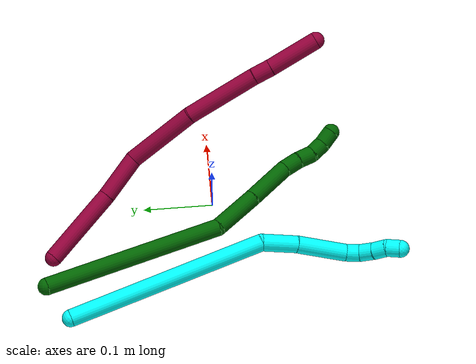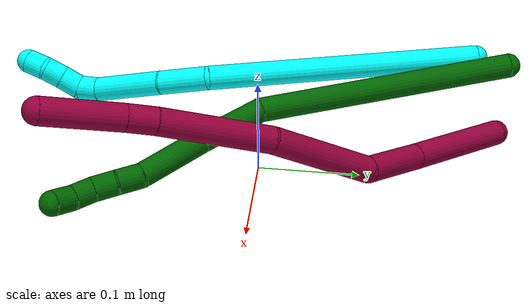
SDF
<sdf version="1.7">
 <world name="default">
  <model name="3">
   <static>0</static>
   <link name="3">
    <collision name="collision-cylinder-e_1_1_4">
     <pose>-0.007961 -0.093376 -0.111943 2.44638 -0.05456 -0.150339</pose>
     <geometry><cylinder><radius>0.0125</radius><length>0.291985</length></cylinder></geometry>
     <surface>
      <friction><ode><mu>1.16</mu><mu2>1.16</mu2><slip1>0</slip1><slip2>0</slip2></ode></friction>
      <contact><ode><kp>1e+06</kp><kd>1</kd><max_vel>0</max_vel><min_depth>0.001</min_depth></ode></contact>
     </surface>
    </collision>
    <visual name="visual-cylinder-e_1_1_4">
     <pose>-0.007961 -0.093376 -0.111943 2.44638 -0.05456 -0.150339</pose>
     <geometry><cylinder><radius>0.0125</radius><length>0.291985</length></cylinder></geometry>
     <material><ambient>0.003922 1 0.996078 1</ambient></material>
    </visual>
    <collision name="collision-cylinder-e_2_4_5">
     <pose>-0.010751 -0.208688 -0.236737 2.10075 0.2007 0.34782</pose>
     <geometry><cylinder><radius>0.0125</radius><length>0.051886</length></cylinder></geometry>
     <surface>
      <friction><ode><mu>1.16</mu><mu2>1.16</mu2><slip1>0</slip1><slip2>0</slip2></ode></friction>
      <contact><ode><kp>1e+06</kp><kd>1</kd><max_vel>0</max_vel><min_depth>0.001</min_depth></ode></contact>
     </surface>
    </collision>
    <visual name="visual-cylinder-e_2_4_5">
     <pose>-0.010751 -0.208688 -0.236737 2.10075 0.2007 0.34782</pose>
     <geometry><cylinder><radius>0.0125</radius><length>0.051886</length></cylinder></geometry>
     <material><ambient>0.003922 1 0.996078 1</ambient></material>
    </visual>
    <collision name="collision-cylinder-e_3_5_6">
     <pose>0.00411 -0.262659 -0.264437 2.00483 0.267816 0.415753</pose>
     <geometry><cylinder><radius>0.0125</radius><length>0.073232</length></cylinder></geometry>
     <surface>
      <friction><ode><mu>1.16</mu><mu2>1.16</mu2><slip1>0</slip1><slip2>0</slip2></ode></friction>
      <contact><ode><kp>1e+06</kp><kd>1</kd><max_vel>0</max_vel><min_depth>0.001</min_depth></ode></contact>
     </surface>
    </collision>
    <visual name="visual-cylinder-e_3_5_6">
     <pose>0.00411 -0.262659 -0.264437 2.00483 0.267816 0.415753</pose>
     <geometry><cylinder><radius>0.0125</radius><length>0.073232</length></cylinder></geometry>
     <material><ambient>0.003922 1 0.996078 1</ambient></material>
    </visual>
    <collision name="collision-cylinder-e_4_6_7">
     <pose>0.016978 -0.302329 -0.285565 2.25917 0.3111 0.641202</pose>
     <geometry><cylinder><radius>0.0125</radius><length>0.020766</length></cylinder></geometry>
     <surface>
      <friction><ode><mu>1.16</mu><mu2>1.16</mu2><slip1>0</slip1><slip2>0</slip2></ode></friction>
      <contact><ode><kp>1e+06</kp><kd>1</kd><max_vel>0</max_vel><min_depth>0.001</min_depth></ode></contact>
     </surface>
    </collision>
    <visual name="visual-cylinder-e_4_6_7">
     <pose>0.016978 -0.302329 -0.285565 2.25917 0.3111 0.641202</pose>
     <geometry><cylinder><radius>0.0125</radius><length>0.020766</length></cylinder></geometry>
     <material><ambient>0.003922 1 0.996078 1</ambient></material>
    </visual>
    <collision name="collision-cylinder-e_5_7_8">
     <pose>0.025255 -0.313507 -0.300778 2.76396 0.487794 1.83187</pose>
     <geometry><cylinder><radius>0.0125</radius><length>0.021758</length></cylinder></geometry>
     <surface>
      <friction><ode><mu>1.16</mu><mu2>1.16</mu2><slip1>0</slip1><slip2>0</slip2></ode></friction>
      <contact><ode><kp>1e+06</kp><kd>1</kd><max_vel>0</max_vel><min_depth>0.001</min_depth></ode></contact>
     </surface>
    </collision>
    <visual name="visual-cylinder-e_5_7_8">
     <pose>0.025255 -0.313507 -0.300778 2.76396 0.487794 1.83187</pose>
     <geometry><cylinder><radius>0.0125</radius><length>0.021758</length></cylinder></geometry>
     <material><ambient>0.003922 1 0.996078 1</ambient></material>
    </visual>
    <collision name="collision-cylinder-e_6_8_9">
     <pose>0.034263 -0.320208 -0.318451 2.79485 0.398136 1.71178</pose>
     <geometry><cylinder><radius>0.0125</radius><length>0.020164</length></cylinder></geometry>
     <surface>
      <friction><ode><mu>1.16</mu><mu2>1.16</mu2><slip1>0</slip1><slip2>0</slip2></ode></friction>
      <contact><ode><kp>1e+06</kp><kd>1</kd><max_vel>0</max_vel><min_depth>0.001</min_depth></ode></contact>
     </surface>
    </collision>
    <visual name="visual-cylinder-e_6_8_9">
     <pose>0.034263 -0.320208 -0.318451 2.79485 0.398136 1.71178</pose>
     <geometry><cylinder><radius>0.0125</radius><length>0.020164</length></cylinder></geometry>
     <material><ambient>0.003922 1 0.996078 1</ambient></material>
    </visual>
    <collision name="collision-cylinder-e_7_9_2">
     <pose>0.043465 -0.328666 -0.333975 2.47839 0.551381 1.37556</pose>
     <geometry><cylinder><radius>0.0125</radius><length>0.02021</length></cylinder></geometry>
     <surface>
      <friction><ode><mu>1.16</mu><mu2>1.16</mu2><slip1>0</slip1><slip2>0</slip2></ode></friction>
      <contact><ode><kp>1e+06</kp><kd>1</kd><max_vel>0</max_vel><min_depth>0.001</min_depth></ode></contact>
     </surface>
    </collision>
    <visual name="visual-cylinder-e_7_9_2">
     <pose>0.043465 -0.328666 -0.333975 2.47839 0.551381 1.37556</pose>
     <geometry><cylinder><radius>0.0125</radius><length>0.02021</length></cylinder></geometry>
     <material><ambient>0.003922 1 0.996078 1</ambient></material>
    </visual>
    <collision name="collision-sphere-2">
     <pose>0.048759 -0.333965 -0.340757 0 -0 0</pose>
     <geometry><sphere><radius>0.0125</radius></sphere></geometry>
     <surface>
      <friction><ode><mu>1.16</mu><mu2>1.16</mu2><slip1>0</slip1><slip2>0</slip2></ode></friction>
      <contact><ode><kp>1e+06</kp><kd>1</kd><max_vel>0</max_vel><min_depth>0.001</min_depth></ode></contact>
     </surface>
    </collision>
    <visual name="visual-sphere-2">
     <pose>0.048759 -0.333965 -0.340757 0 -0 0</pose>
     <geometry><sphere><radius>0.0125</radius></sphere></geometry>
     <material><ambient>0.003922 1 0.996078 1</ambient></material>
    </visual>
    <collision name="collision-sphere-9">
     <pose>0.038172 -0.323367 -0.327192 0 -0 0</pose>
     <geometry><sphere><radius>0.0125</radius></sphere></geometry>
     <surface>
      <friction><ode><mu>1.16</mu><mu2>1.16</mu2><slip1>0</slip1><slip2>0</slip2></ode></friction>
      <contact><ode><kp>1e+06</kp><kd>1</kd><max_vel>0</max_vel><min_depth>0.001</min_depth></ode></contact>
     </surface>
    </collision>
    <visual name="visual-sphere-9">
     <pose>0.038172 -0.323367 -0.327192 0 -0 0</pose>
     <geometry><sphere><radius>0.0125</radius></sphere></geometry>
     <material><ambient>0.003922 1 0.996078 1</ambient></material>
    </visual>
    <collision name="collision-sphere-4">
     <pose>-0.015923 -0.186753 -0.223886 0 -0 0</pose>
     <geometry><sphere><radius>0.0125</radius></sphere></geometry>
     <surface>
      <friction><ode><mu>1.16</mu><mu2>1.16</mu2><slip1>0</slip1><slip2>0</slip2></ode></friction>
      <contact><ode><kp>1e+06</kp><kd>1</kd><max_vel>0</max_vel><min_depth>0.001</min_depth></ode></contact>
     </surface>
    </collision>
    <visual name="visual-sphere-4">
     <pose>-0.015923 -0.186753 -0.223886 0 -0 0</pose>
     <geometry><sphere><radius>0.0125</radius></sphere></geometry>
     <material><ambient>0.003922 1 0.996078 1</ambient></material>
    </visual>
    <collision name="collision-sphere-1">
     <geometry><sphere><radius>0.0125</radius></sphere></geometry>
     <surface>
      <friction><ode><mu>1.16</mu><mu2>1.16</mu2><slip1>0</slip1><slip2>0</slip2></ode></friction>
      <contact><ode><kp>1e+06</kp><kd>1</kd><max_vel>0</max_vel><min_depth>0.001</min_depth></ode></contact>
     </surface>
    </collision>
    <visual name="visual-sphere-1">
     <geometry><sphere><radius>0.0125</radius></sphere></geometry>
     <material><ambient>0.003922 1 0.996078 1</ambient></material>
    </visual>
    <collision name="collision-sphere-8">
     <pose>0.030354 -0.31705 -0.309711 0 -0 0</pose>
     <geometry><sphere><radius>0.0125</radius></sphere></geometry>
     <surface>
      <friction><ode><mu>1.16</mu><mu2>1.16</mu2><slip1>0</slip1><slip2>0</slip2></ode></friction>
      <contact><ode><kp>1e+06</kp><kd>1</kd><max_vel>0</max_vel><min_depth>0.001</min_depth></ode></contact>
     </surface>
    </collision>
    <visual name="visual-sphere-8">
     <pose>0.030354 -0.31705 -0.309711 0 -0 0</pose>
     <geometry><sphere><radius>0.0125</radius></sphere></geometry>
     <material><ambient>0.003922 1 0.996078 1</ambient></material>
    </visual>
    <collision name="collision-sphere-5">
     <pose>-0.005579 -0.230623 -0.249587 0 -0 0</pose>
     <geometry><sphere><radius>0.0125</radius></sphere></geometry>
     <surface>
      <friction><ode><mu>1.16</mu><mu2>1.16</mu2><slip1>0</slip1><slip2>0</slip2></ode></friction>
      <contact><ode><kp>1e+06</kp><kd>1</kd><max_vel>0</max_vel><min_depth>0.001</min_depth></ode></contact>
     </surface>
    </collision>
    <visual name="visual-sphere-5">
     <pose>-0.005579 -0.230623 -0.249587 0 -0 0</pose>
     <geometry><sphere><radius>0.0125</radius></sphere></geometry>
     <material><ambient>0.003922 1 0.996078 1</ambient></material>
    </visual>
    <collision name="collision-sphere-6">
     <pose>0.0138 -0.294696 -0.279286 0 -0 0</pose>
     <geometry><sphere><radius>0.0125</radius></sphere></geometry>
     <surface>
      <friction><ode><mu>1.16</mu><mu2>1.16</mu2><slip1>0</slip1><slip2>0</slip2></ode></friction>
      <contact><ode><kp>1e+06</kp><kd>1</kd><max_vel>0</max_vel><min_depth>0.001</min_depth></ode></contact>
     </surface>
    </collision>
    <visual name="visual-sphere-6">
     <pose>0.0138 -0.294696 -0.279286 0 -0 0</pose>
     <geometry><sphere><radius>0.0125</radius></sphere></geometry>
     <material><ambient>0.003922 1 0.996078 1</ambient></material>
    </visual>
    <collision name="collision-sphere-7">
     <pose>0.020157 -0.309963 -0.291845 0 -0 0</pose>
     <geometry><sphere><radius>0.0125</radius></sphere></geometry>
     <surface>
      <friction><ode><mu>1.16</mu><mu2>1.16</mu2><slip1>0</slip1><slip2>0</slip2></ode></friction>
      <contact><ode><kp>1e+06</kp><kd>1</kd><max_vel>0</max_vel><min_depth>0.001</min_depth></ode></contact>
     </surface>
    </collision>
    <visual name="visual-sphere-7">
     <pose>0.020157 -0.309963 -0.291845 0 -0 0</pose>
     <geometry><sphere><radius>0.0125</radius></sphere></geometry>
     <material><ambient>0.003922 1 0.996078 1</ambient></material>
    </visual>
    <inertial>
     <pose>-0.00022 -0.167052 -0.179958 0 -0 0</pose>
     <mass>0.5</mass>
     <inertia>
      <ixx>0.001819</ixx>
      <ixy>0</ixy>
      <ixz>0</ixz>
      <iyy>-0.001903</iyy>
      <iyz>0</iyz>
      <izz>0.001452</izz>
     </inertia>
    </inertial>
   </link>
   <pose>-0.177607 0.214972 0.032556 2.32206 -0.282167 -2.89922</pose>
  </model>
  <model name="6">
   <static>0</static>
   <link name="6">
    <collision name="collision-cylinder-e_1_1_4">
     <pose>0.019491 -0.108825 0.071413 0.990062 0.148636 0.080349</pose>
     <geometry><cylinder><radius>0.0125</radius><length>0.26323</length></cylinder></geometry>
     <surface>
      <friction><ode><mu>1.16</mu><mu2>1.16</mu2><slip1>0</slip1><slip2>0</slip2></ode></friction>
      <contact><ode><kp>1e+06</kp><kd>1</kd><max_vel>0</max_vel><min_depth>0.001</min_depth></ode></contact>
     </surface>
    </collision>
    <visual name="visual-cylinder-e_1_1_4">
     <pose>0.019491 -0.108825 0.071413 0.990062 0.148636 0.080349</pose>
     <geometry><cylinder><radius>0.0125</radius><length>0.26323</length></cylinder></geometry>
     <material><ambient>0 0.392157 0.003922 1</ambient></material>
    </visual>
    <collision name="collision-cylinder-e_2_4_5">
     <pose>0.054504 -0.248836 0.151942 1.2864 0.445673 0.336474</pose>
     <geometry><cylinder><radius>0.0125</radius><length>0.072017</length></cylinder></geometry>
     <surface>
      <friction><ode><mu>1.16</mu><mu2>1.16</mu2><slip1>0</slip1><slip2>0</slip2></ode></friction>
      <contact><ode><kp>1e+06</kp><kd>1</kd><max_vel>0</max_vel><min_depth>0.001</min_depth></ode></contact>
     </surface>
    </collision>
    <visual name="visual-cylinder-e_2_4_5">
     <pose>0.054504 -0.248836 0.151942 1.2864 0.445673 0.336474</pose>
     <geometry><cylinder><radius>0.0125</radius><length>0.072017</length></cylinder></geometry>
     <material><ambient>0 0.392157 0.003922 1</ambient></material>
    </visual>
    <collision name="collision-cylinder-e_3_5_6">
     <pose>0.08578 -0.310932 0.168772 1.32624 0.459261 0.3612</pose>
     <geometry><cylinder><radius>0.0125</radius><length>0.071083</length></cylinder></geometry>
     <surface>
      <friction><ode><mu>1.16</mu><mu2>1.16</mu2><slip1>0</slip1><slip2>0</slip2></ode></friction>
      <contact><ode><kp>1e+06</kp><kd>1</kd><max_vel>0</max_vel><min_depth>0.001</min_depth></ode></contact>
     </surface>
    </collision>
    <visual name="visual-cylinder-e_3_5_6">
     <pose>0.08578 -0.310932 0.168772 1.32624 0.459261 0.3612</pose>
     <geometry><cylinder><radius>0.0125</radius><length>0.071083</length></cylinder></geometry>
     <material><ambient>0 0.392157 0.003922 1</ambient></material>
    </visual>
    <collision name="collision-cylinder-e_4_6_7">
     <pose>0.106023 -0.352252 0.182193 1.06924 0.361426 0.215537</pose>
     <geometry><cylinder><radius>0.0125</radius><length>0.025382</length></cylinder></geometry>
     <surface>
      <friction><ode><mu>1.16</mu><mu2>1.16</mu2><slip1>0</slip1><slip2>0</slip2></ode></friction>
      <contact><ode><kp>1e+06</kp><kd>1</kd><max_vel>0</max_vel><min_depth>0.001</min_depth></ode></contact>
     </surface>
    </collision>
    <visual name="visual-cylinder-e_4_6_7">
     <pose>0.106023 -0.352252 0.182193 1.06924 0.361426 0.215537</pose>
     <geometry><cylinder><radius>0.0125</radius><length>0.025382</length></cylinder></geometry>
     <material><ambient>0 0.392157 0.003922 1</ambient></material>
    </visual>
    <collision name="collision-cylinder-e_5_7_8">
     <pose>0.113165 -0.372832 0.19324 1.08744 0.227073 0.13764</pose>
     <geometry><cylinder><radius>0.0125</radius><length>0.02358</length></cylinder></geometry>
     <surface>
      <friction><ode><mu>1.16</mu><mu2>1.16</mu2><slip1>0</slip1><slip2>0</slip2></ode></friction>
      <contact><ode><kp>1e+06</kp><kd>1</kd><max_vel>0</max_vel><min_depth>0.001</min_depth></ode></contact>
     </surface>
    </collision>
    <visual name="visual-cylinder-e_5_7_8">
     <pose>0.113165 -0.372832 0.19324 1.08744 0.227073 0.13764</pose>
     <geometry><cylinder><radius>0.0125</radius><length>0.02358</length></cylinder></geometry>
     <material><ambient>0 0.392157 0.003922 1</ambient></material>
    </visual>
    <collision name="collision-cylinder-e_6_8_9">
     <pose>0.121354 -0.391878 0.202211 1.18228 0.523497 0.355824</pose>
     <geometry><cylinder><radius>0.0125</radius><length>0.022143</length></cylinder></geometry>
     <surface>
      <friction><ode><mu>1.16</mu><mu2>1.16</mu2><slip1>0</slip1><slip2>0</slip2></ode></friction>
      <contact><ode><kp>1e+06</kp><kd>1</kd><max_vel>0</max_vel><min_depth>0.001</min_depth></ode></contact>
     </surface>
    </collision>
    <visual name="visual-cylinder-e_6_8_9">
     <pose>0.121354 -0.391878 0.202211 1.18228 0.523497 0.355824</pose>
     <geometry><cylinder><radius>0.0125</radius><length>0.022143</length></cylinder></geometry>
     <material><ambient>0 0.392157 0.003922 1</ambient></material>
    </visual>
    <collision name="collision-cylinder-e_7_9_2">
     <pose>0.134559 -0.407762 0.21024 1.01055 0.747502 0.427272</pose>
     <geometry><cylinder><radius>0.0125</radius><length>0.022565</length></cylinder></geometry>
     <surface>
      <friction><ode><mu>1.16</mu><mu2>1.16</mu2><slip1>0</slip1><slip2>0</slip2></ode></friction>
      <contact><ode><kp>1e+06</kp><kd>1</kd><max_vel>0</max_vel><min_depth>0.001</min_depth></ode></contact>
     </surface>
    </collision>
    <visual name="visual-cylinder-e_7_9_2">
     <pose>0.134559 -0.407762 0.21024 1.01055 0.747502 0.427272</pose>
     <geometry><cylinder><radius>0.0125</radius><length>0.022565</length></cylinder></geometry>
     <material><ambient>0 0.392157 0.003922 1</ambient></material>
    </visual>
    <collision name="collision-sphere-2">
     <pose>0.142229 -0.414771 0.214637 0 -0 0</pose>
     <geometry><sphere><radius>0.0125</radius></sphere></geometry>
     <surface>
      <friction><ode><mu>1.16</mu><mu2>1.16</mu2><slip1>0</slip1><slip2>0</slip2></ode></friction>
      <contact><ode><kp>1e+06</kp><kd>1</kd><max_vel>0</max_vel><min_depth>0.001</min_depth></ode></contact>
     </surface>
    </collision>
    <visual name="visual-sphere-2">
     <pose>0.142229 -0.414771 0.214637 0 -0 0</pose>
     <geometry><sphere><radius>0.0125</radius></sphere></geometry>
     <material><ambient>0 0.392157 0.003922 1</ambient></material>
    </visual>
    <collision name="collision-sphere-9">
     <pose>0.126889 -0.400752 0.205843 0 -0 0</pose>
     <geometry><sphere><radius>0.0125</radius></sphere></geometry>
     <surface>
      <friction><ode><mu>1.16</mu><mu2>1.16</mu2><slip1>0</slip1><slip2>0</slip2></ode></friction>
      <contact><ode><kp>1e+06</kp><kd>1</kd><max_vel>0</max_vel><min_depth>0.001</min_depth></ode></contact>
     </surface>
    </collision>
    <visual name="visual-sphere-9">
     <pose>0.126889 -0.400752 0.205843 0 -0 0</pose>
     <geometry><sphere><radius>0.0125</radius></sphere></geometry>
     <material><ambient>0 0.392157 0.003922 1</ambient></material>
    </visual>
    <collision name="collision-sphere-4">
     <pose>0.038982 -0.21765 0.142826 0 -0 0</pose>
     <geometry><sphere><radius>0.0125</radius></sphere></geometry>
     <surface>
      <friction><ode><mu>1.16</mu><mu2>1.16</mu2><slip1>0</slip1><slip2>0</slip2></ode></friction>
      <contact><ode><kp>1e+06</kp><kd>1</kd><max_vel>0</max_vel><min_depth>0.001</min_depth></ode></contact>
     </surface>
    </collision>
    <visual name="visual-sphere-4">
     <pose>0.038982 -0.21765 0.142826 0 -0 0</pose>
     <geometry><sphere><radius>0.0125</radius></sphere></geometry>
     <material><ambient>0 0.392157 0.003922 1</ambient></material>
    </visual>
    <collision name="collision-sphere-1">
     <geometry><sphere><radius>0.0125</radius></sphere></geometry>
     <surface>
      <friction><ode><mu>1.16</mu><mu2>1.16</mu2><slip1>0</slip1><slip2>0</slip2></ode></friction>
      <contact><ode><kp>1e+06</kp><kd>1</kd><max_vel>0</max_vel><min_depth>0.001</min_depth></ode></contact>
     </surface>
    </collision>
    <visual name="visual-sphere-1">
     <geometry><sphere><radius>0.0125</radius></sphere></geometry>
     <material><ambient>0 0.392157 0.003922 1</ambient></material>
    </visual>
    <collision name="collision-sphere-8">
     <pose>0.115819 -0.383004 0.198579 0 -0 0</pose>
     <geometry><sphere><radius>0.0125</radius></sphere></geometry>
     <surface>
      <friction><ode><mu>1.16</mu><mu2>1.16</mu2><slip1>0</slip1><slip2>0</slip2></ode></friction>
      <contact><ode><kp>1e+06</kp><kd>1</kd><max_vel>0</max_vel><min_depth>0.001</min_depth></ode></contact>
     </surface>
    </collision>
    <visual name="visual-sphere-8">
     <pose>0.115819 -0.383004 0.198579 0 -0 0</pose>
     <geometry><sphere><radius>0.0125</radius></sphere></geometry>
     <material><ambient>0 0.392157 0.003922 1</ambient></material>
    </visual>
    <collision name="collision-sphere-5">
     <pose>0.070026 -0.280022 0.161059 0 -0 0</pose>
     <geometry><sphere><radius>0.0125</radius></sphere></geometry>
     <surface>
      <friction><ode><mu>1.16</mu><mu2>1.16</mu2><slip1>0</slip1><slip2>0</slip2></ode></friction>
      <contact><ode><kp>1e+06</kp><kd>1</kd><max_vel>0</max_vel><min_depth>0.001</min_depth></ode></contact>
     </surface>
    </collision>
    <visual name="visual-sphere-5">
     <pose>0.070026 -0.280022 0.161059 0 -0 0</pose>
     <geometry><sphere><radius>0.0125</radius></sphere></geometry>
     <material><ambient>0 0.392157 0.003922 1</ambient></material>
    </visual>
    <collision name="collision-sphere-6">
     <pose>0.101535 -0.341843 0.176486 0 -0 0</pose>
     <geometry><sphere><radius>0.0125</radius></sphere></geometry>
     <surface>
      <friction><ode><mu>1.16</mu><mu2>1.16</mu2><slip1>0</slip1><slip2>0</slip2></ode></friction>
      <contact><ode><kp>1e+06</kp><kd>1</kd><max_vel>0</max_vel><min_depth>0.001</min_depth></ode></contact>
     </surface>
    </collision>
    <visual name="visual-sphere-6">
     <pose>0.101535 -0.341843 0.176486 0 -0 0</pose>
     <geometry><sphere><radius>0.0125</radius></sphere></geometry>
     <material><ambient>0 0.392157 0.003922 1</ambient></material>
    </visual>
    <collision name="collision-sphere-7">
     <pose>0.110511 -0.362661 0.187901 0 -0 0</pose>
     <geometry><sphere><radius>0.0125</radius></sphere></geometry>
     <surface>
      <friction><ode><mu>1.16</mu><mu2>1.16</mu2><slip1>0</slip1><slip2>0</slip2></ode></friction>
      <contact><ode><kp>1e+06</kp><kd>1</kd><max_vel>0</max_vel><min_depth>0.001</min_depth></ode></contact>
     </surface>
    </collision>
    <visual name="visual-sphere-7">
     <pose>0.110511 -0.362661 0.187901 0 -0 0</pose>
     <geometry><sphere><radius>0.0125</radius></sphere></geometry>
     <material><ambient>0 0.392157 0.003922 1</ambient></material>
    </visual>
    <inertial>
     <pose>0.052473 -0.208558 0.12028 0 -0 0</pose>
     <mass>0.5</mass>
     <inertia>
      <ixx>0.001726</ixx>
      <ixy>0</ixy>
      <ixz>0</ixz>
      <iyy>0.000994</iyy>
      <iyz>0</iyz>
      <izz>0.001087</izz>
     </inertia>
    </inertial>
   </link>
   <pose>-0.13461 0.245569 0.051752 0.763635 -0.566793 0.091075</pose>
  </model>
  <model name="8">
   <static>0</static>
   <link name="8">
    <collision name="collision-cylinder-e_1_1_4">
     <pose>0.00776 -0.037051 -0.044924 2.45195 0.132473 0.365254</pose>
     <geometry><cylinder><radius>0.0125</radius><length>0.117493</length></cylinder></geometry>
     <surface>
      <friction><ode><mu>1.16</mu><mu2>1.16</mu2><slip1>0</slip1><slip2>0</slip2></ode></friction>
      <contact><ode><kp>1e+06</kp><kd>1</kd><max_vel>0</max_vel><min_depth>0.001</min_depth></ode></contact>
     </surface>
    </collision>
    <visual name="visual-cylinder-e_1_1_4">
     <pose>0.00776 -0.037051 -0.044924 2.45195 0.132473 0.365254</pose>
     <geometry><cylinder><radius>0.0125</radius><length>0.117493</length></cylinder></geometry>
     <material><ambient>0.584314 0 0.227451 1</ambient></material>
    </visual>
    <collision name="collision-cylinder-e_2_4_5">
     <pose>0.017044 -0.094955 -0.115823 2.46513 0.045746 0.129893</pose>
     <geometry><cylinder><radius>0.0125</radius><length>0.06669</length></cylinder></geometry>
     <surface>
      <friction><ode><mu>1.16</mu><mu2>1.16</mu2><slip1>0</slip1><slip2>0</slip2></ode></friction>
      <contact><ode><kp>1e+06</kp><kd>1</kd><max_vel>0</max_vel><min_depth>0.001</min_depth></ode></contact>
     </surface>
    </collision>
    <visual name="visual-cylinder-e_2_4_5">
     <pose>0.017044 -0.094955 -0.115823 2.46513 0.045746 0.129893</pose>
     <geometry><cylinder><radius>0.0125</radius><length>0.06669</length></cylinder></geometry>
     <material><ambient>0.584314 0 0.227451 1</ambient></material>
    </visual>
    <collision name="collision-cylinder-e_3_5_6">
     <pose>0.02614 -0.126498 -0.193217 2.93661 0.143166 1.21766</pose>
     <geometry><cylinder><radius>0.0125</radius><length>0.106123</length></cylinder></geometry>
     <surface>
      <friction><ode><mu>1.16</mu><mu2>1.16</mu2><slip1>0</slip1><slip2>0</slip2></ode></friction>
      <contact><ode><kp>1e+06</kp><kd>1</kd><max_vel>0</max_vel><min_depth>0.001</min_depth></ode></contact>
     </surface>
    </collision>
    <visual name="visual-cylinder-e_3_5_6">
     <pose>0.02614 -0.126498 -0.193217 2.93661 0.143166 1.21766</pose>
     <geometry><cylinder><radius>0.0125</radius><length>0.106123</length></cylinder></geometry>
     <material><ambient>0.584314 0 0.227451 1</ambient></material>
    </visual>
    <collision name="collision-cylinder-e_4_6_7">
     <pose>0.049956 -0.151135 -0.294259 2.8676 0.305326 1.68037</pose>
     <geometry><cylinder><radius>0.0125</radius><length>0.10809</length></cylinder></geometry>
     <surface>
      <friction><ode><mu>1.16</mu><mu2>1.16</mu2><slip1>0</slip1><slip2>0</slip2></ode></friction>
      <contact><ode><kp>1e+06</kp><kd>1</kd><max_vel>0</max_vel><min_depth>0.001</min_depth></ode></contact>
     </surface>
    </collision>
    <visual name="visual-cylinder-e_4_6_7">
     <pose>0.049956 -0.151135 -0.294259 2.8676 0.305326 1.68037</pose>
     <geometry><cylinder><radius>0.0125</radius><length>0.10809</length></cylinder></geometry>
     <material><ambient>0.584314 0 0.227451 1</ambient></material>
    </visual>
    <collision name="collision-cylinder-e_5_7_8">
     <pose>0.071197 -0.168768 -0.355748 2.84043 0.382168 1.81133</pose>
     <geometry><cylinder><radius>0.0125</radius><length>0.026785</length></cylinder></geometry>
     <surface>
      <friction><ode><mu>1.16</mu><mu2>1.16</mu2><slip1>0</slip1><slip2>0</slip2></ode></friction>
      <contact><ode><kp>1e+06</kp><kd>1</kd><max_vel>0</max_vel><min_depth>0.001</min_depth></ode></contact>
     </surface>
    </collision>
    <visual name="visual-cylinder-e_5_7_8">
     <pose>0.071197 -0.168768 -0.355748 2.84043 0.382168 1.81133</pose>
     <geometry><cylinder><radius>0.0125</radius><length>0.026785</length></cylinder></geometry>
     <material><ambient>0.584314 0 0.227451 1</ambient></material>
    </visual>
    <collision name="collision-cylinder-e_6_8_2">
     <pose>0.088773 -0.18454 -0.400708 2.79145 0.343003 1.54978</pose>
     <geometry><cylinder><radius>0.0125</radius><length>0.07482</length></cylinder></geometry>
     <surface>
      <friction><ode><mu>1.16</mu><mu2>1.16</mu2><slip1>0</slip1><slip2>0</slip2></ode></friction>
      <contact><ode><kp>1e+06</kp><kd>1</kd><max_vel>0</max_vel><min_depth>0.001</min_depth></ode></contact>
     </surface>
    </collision>
    <visual name="visual-cylinder-e_6_8_2">
     <pose>0.088773 -0.18454 -0.400708 2.79145 0.343003 1.54978</pose>
     <geometry><cylinder><radius>0.0125</radius><length>0.07482</length></cylinder></geometry>
     <material><ambient>0.584314 0 0.227451 1</ambient></material>
    </visual>
    <collision name="collision-sphere-2">
     <pose>0.101355 -0.196625 -0.433801 0 -0 0</pose>
     <geometry><sphere><radius>0.0125</radius></sphere></geometry>
     <surface>
      <friction><ode><mu>1.16</mu><mu2>1.16</mu2><slip1>0</slip1><slip2>0</slip2></ode></friction>
      <contact><ode><kp>1e+06</kp><kd>1</kd><max_vel>0</max_vel><min_depth>0.001</min_depth></ode></contact>
     </surface>
    </collision>
    <visual name="visual-sphere-2">
     <pose>0.101355 -0.196625 -0.433801 0 -0 0</pose>
     <geometry><sphere><radius>0.0125</radius></sphere></geometry>
     <material><ambient>0.584314 0 0.227451 1</ambient></material>
    </visual>
    <collision name="collision-sphere-4">
     <pose>0.015519 -0.074101 -0.089848 0 -0 0</pose>
     <geometry><sphere><radius>0.0125</radius></sphere></geometry>
     <surface>
      <friction><ode><mu>1.16</mu><mu2>1.16</mu2><slip1>0</slip1><slip2>0</slip2></ode></friction>
      <contact><ode><kp>1e+06</kp><kd>1</kd><max_vel>0</max_vel><min_depth>0.001</min_depth></ode></contact>
     </surface>
    </collision>
    <visual name="visual-sphere-4">
     <pose>0.015519 -0.074101 -0.089848 0 -0 0</pose>
     <geometry><sphere><radius>0.0125</radius></sphere></geometry>
     <material><ambient>0.584314 0 0.227451 1</ambient></material>
    </visual>
    <collision name="collision-sphere-1">
     <geometry><sphere><radius>0.0125</radius></sphere></geometry>
     <surface>
      <friction><ode><mu>1.16</mu><mu2>1.16</mu2><slip1>0</slip1><slip2>0</slip2></ode></friction>
      <contact><ode><kp>1e+06</kp><kd>1</kd><max_vel>0</max_vel><min_depth>0.001</min_depth></ode></contact>
     </surface>
    </collision>
    <visual name="visual-sphere-1">
     <geometry><sphere><radius>0.0125</radius></sphere></geometry>
     <material><ambient>0.584314 0 0.227451 1</ambient></material>
    </visual>
    <collision name="collision-sphere-8">
     <pose>0.076191 -0.172454 -0.367615 0 -0 0</pose>
     <geometry><sphere><radius>0.0125</radius></sphere></geometry>
     <surface>
      <friction><ode><mu>1.16</mu><mu2>1.16</mu2><slip1>0</slip1><slip2>0</slip2></ode></friction>
      <contact><ode><kp>1e+06</kp><kd>1</kd><max_vel>0</max_vel><min_depth>0.001</min_depth></ode></contact>
     </surface>
    </collision>
    <visual name="visual-sphere-8">
     <pose>0.076191 -0.172454 -0.367615 0 -0 0</pose>
     <geometry><sphere><radius>0.0125</radius></sphere></geometry>
     <material><ambient>0.584314 0 0.227451 1</ambient></material>
    </visual>
    <collision name="collision-sphere-5">
     <pose>0.018569 -0.115808 -0.141798 0 -0 0</pose>
     <geometry><sphere><radius>0.0125</radius></sphere></geometry>
     <surface>
      <friction><ode><mu>1.16</mu><mu2>1.16</mu2><slip1>0</slip1><slip2>0</slip2></ode></friction>
      <contact><ode><kp>1e+06</kp><kd>1</kd><max_vel>0</max_vel><min_depth>0.001</min_depth></ode></contact>
     </surface>
    </collision>
    <visual name="visual-sphere-5">
     <pose>0.018569 -0.115808 -0.141798 0 -0 0</pose>
     <geometry><sphere><radius>0.0125</radius></sphere></geometry>
     <material><ambient>0.584314 0 0.227451 1</ambient></material>
    </visual>
    <collision name="collision-sphere-6">
     <pose>0.03371 -0.137188 -0.244636 0 -0 0</pose>
     <geometry><sphere><radius>0.0125</radius></sphere></geometry>
     <surface>
      <friction><ode><mu>1.16</mu><mu2>1.16</mu2><slip1>0</slip1><slip2>0</slip2></ode></friction>
      <contact><ode><kp>1e+06</kp><kd>1</kd><max_vel>0</max_vel><min_depth>0.001</min_depth></ode></contact>
     </surface>
    </collision>
    <visual name="visual-sphere-6">
     <pose>0.03371 -0.137188 -0.244636 0 -0 0</pose>
     <geometry><sphere><radius>0.0125</radius></sphere></geometry>
     <material><ambient>0.584314 0 0.227451 1</ambient></material>
    </visual>
    <collision name="collision-sphere-7">
     <pose>0.066203 -0.165082 -0.343881 0 -0 0</pose>
     <geometry><sphere><radius>0.0125</radius></sphere></geometry>
     <surface>
      <friction><ode><mu>1.16</mu><mu2>1.16</mu2><slip1>0</slip1><slip2>0</slip2></ode></friction>
      <contact><ode><kp>1e+06</kp><kd>1</kd><max_vel>0</max_vel><min_depth>0.001</min_depth></ode></contact>
     </surface>
    </collision>
    <visual name="visual-sphere-7">
     <pose>0.066203 -0.165082 -0.343881 0 -0 0</pose>
     <geometry><sphere><radius>0.0125</radius></sphere></geometry>
     <material><ambient>0.584314 0 0.227451 1</ambient></material>
    </visual>
    <inertial>
     <pose>0.037542 -0.117548 -0.209646 0 -0 0</pose>
     <mass>0.5</mass>
     <inertia><ixx>0.00048</ixx><ixy>0</ixy><ixz>0</ixz><iyy>0.000151</iyy><iyz>0</iyz><izz>5.2e-05</izz></inertia>
    </inertial>
   </link>
   <pose>-0.070463 0.234248 0.011491 2.62924 0.661105 -2.03018</pose>
  </model>
 </world>
</sdf>
